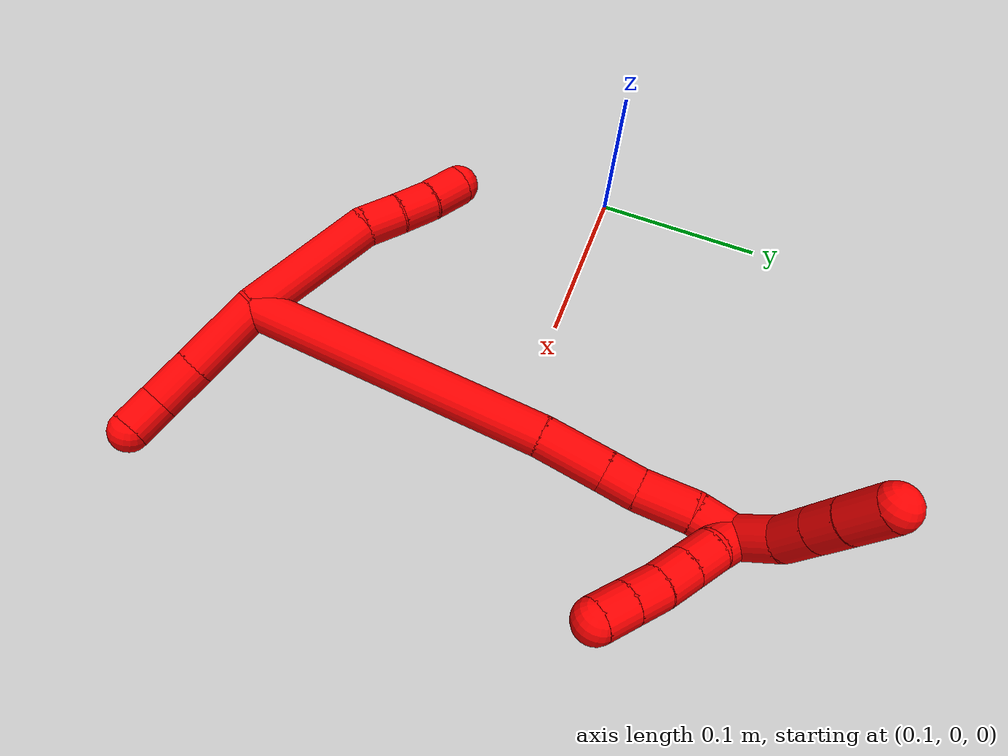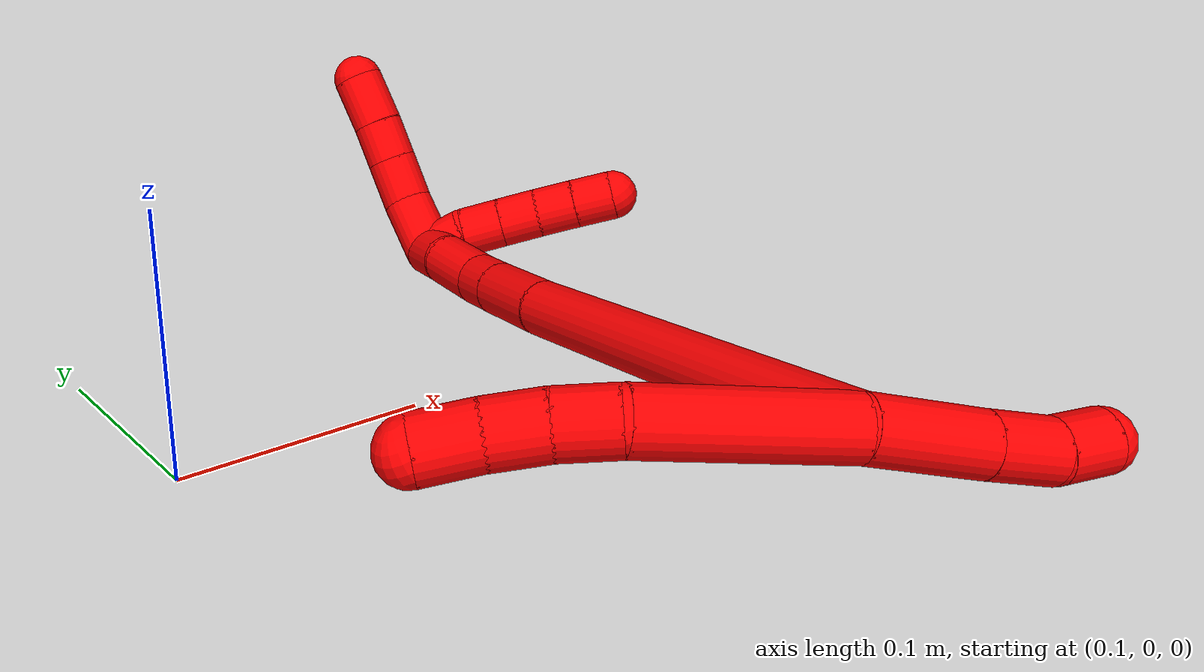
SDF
<sdf version="1.7">
 <world name="default">
  <model name="2">
   <static>0</static>
   <link name="2">
    <collision name="collision-cylinder-e_1_2_8">
     <pose>-0.029377 0.017899 0.021505 -0.694149 -0.80977 0.307589</pose>
     <geometry><cylinder><radius>0.0125</radius><length>0.081139</length></cylinder></geometry>
     <surface>
      <friction><ode><mu>1.16</mu><mu2>1.16</mu2><slip1>0</slip1><slip2>0</slip2></ode></friction>
      <contact><ode><kp>1e+06</kp><kd>1</kd><max_vel>0</max_vel><min_depth>0.001</min_depth></ode></contact>
     </surface>
    </collision>
    <visual name="visual-cylinder-e_1_2_8">
     <pose>-0.029377 0.017899 0.021505 -0.694149 -0.80977 0.307589</pose>
     <geometry><cylinder><radius>0.0125</radius><length>0.081139</length></cylinder></geometry>
     <material><ambient>1 0 0 1</ambient></material>
    </visual>
    <collision name="collision-cylinder-e_2_8_9">
     <pose>-0.066845 0.042935 0.046916 -1.06994 -0.782596 0.479585</pose>
     <geometry><cylinder><radius>0.0125</radius><length>0.022947</length></cylinder></geometry>
     <surface>
      <friction><ode><mu>1.16</mu><mu2>1.16</mu2><slip1>0</slip1><slip2>0</slip2></ode></friction>
      <contact><ode><kp>1e+06</kp><kd>1</kd><max_vel>0</max_vel><min_depth>0.001</min_depth></ode></contact>
     </surface>
    </collision>
    <visual name="visual-cylinder-e_2_8_9">
     <pose>-0.066845 0.042935 0.046916 -1.06994 -0.782596 0.479585</pose>
     <geometry><cylinder><radius>0.0125</radius><length>0.022947</length></cylinder></geometry>
     <material><ambient>1 0 0 1</ambient></material>
    </visual>
    <collision name="collision-cylinder-e_3_9_10">
     <pose>-0.083572 0.056315 0.0541 -1.08743 -0.886079 0.55866</pose>
     <geometry><cylinder><radius>0.0125</radius><length>0.0223</length></cylinder></geometry>
     <surface>
      <friction><ode><mu>1.16</mu><mu2>1.16</mu2><slip1>0</slip1><slip2>0</slip2></ode></friction>
      <contact><ode><kp>1e+06</kp><kd>1</kd><max_vel>0</max_vel><min_depth>0.001</min_depth></ode></contact>
     </surface>
    </collision>
    <visual name="visual-cylinder-e_3_9_10">
     <pose>-0.083572 0.056315 0.0541 -1.08743 -0.886079 0.55866</pose>
     <geometry><cylinder><radius>0.0125</radius><length>0.0223</length></cylinder></geometry>
     <material><ambient>1 0 0 1</ambient></material>
    </visual>
    <collision name="collision-cylinder-e_4_10_6">
     <pose>-0.102104 0.067962 0.060886 -0.994893 -0.993731 0.57268</pose>
     <geometry><cylinder><radius>0.0125</radius><length>0.023615</length></cylinder></geometry>
     <surface>
      <friction><ode><mu>1.16</mu><mu2>1.16</mu2><slip1>0</slip1><slip2>0</slip2></ode></friction>
      <contact><ode><kp>1e+06</kp><kd>1</kd><max_vel>0</max_vel><min_depth>0.001</min_depth></ode></contact>
     </surface>
    </collision>
    <visual name="visual-cylinder-e_4_10_6">
     <pose>-0.102104 0.067962 0.060886 -0.994893 -0.993731 0.57268</pose>
     <geometry><cylinder><radius>0.0125</radius><length>0.023615</length></cylinder></geometry>
     <material><ambient>1 0 0 1</ambient></material>
    </visual>
    <collision name="collision-cylinder-e_1_2_11">
     <pose>0.016543 -0.008218 -0.015757 2.66085 0.74961 2.02719</pose>
     <geometry><cylinder><radius>0.0125</radius><length>0.048559</length></cylinder></geometry>
     <surface>
      <friction><ode><mu>1.16</mu><mu2>1.16</mu2><slip1>0</slip1><slip2>0</slip2></ode></friction>
      <contact><ode><kp>1e+06</kp><kd>1</kd><max_vel>0</max_vel><min_depth>0.001</min_depth></ode></contact>
     </surface>
    </collision>
    <visual name="visual-cylinder-e_1_2_11">
     <pose>0.016543 -0.008218 -0.015757 2.66085 0.74961 2.02719</pose>
     <geometry><cylinder><radius>0.0125</radius><length>0.048559</length></cylinder></geometry>
     <material><ambient>1 0 0 1</ambient></material>
    </visual>
    <collision name="collision-cylinder-e_2_11_12">
     <pose>0.043179 -0.021252 -0.040572 2.65297 0.777309 2.04787</pose>
     <geometry><cylinder><radius>0.0125</radius><length>0.028782</length></cylinder></geometry>
     <surface>
      <friction><ode><mu>1.16</mu><mu2>1.16</mu2><slip1>0</slip1><slip2>0</slip2></ode></friction>
      <contact><ode><kp>1e+06</kp><kd>1</kd><max_vel>0</max_vel><min_depth>0.001</min_depth></ode></contact>
     </surface>
    </collision>
    <visual name="visual-cylinder-e_2_11_12">
     <pose>0.043179 -0.021252 -0.040572 2.65297 0.777309 2.04787</pose>
     <geometry><cylinder><radius>0.0125</radius><length>0.028782</length></cylinder></geometry>
     <material><ambient>1 0 0 1</ambient></material>
    </visual>
    <collision name="collision-cylinder-e_3_12_5">
     <pose>0.062951 -0.028865 -0.054812 2.64662 1.02412 2.29666</pose>
     <geometry><cylinder><radius>0.0125</radius><length>0.022659</length></cylinder></geometry>
     <surface>
      <friction><ode><mu>1.16</mu><mu2>1.16</mu2><slip1>0</slip1><slip2>0</slip2></ode></friction>
      <contact><ode><kp>1e+06</kp><kd>1</kd><max_vel>0</max_vel><min_depth>0.001</min_depth></ode></contact>
     </surface>
    </collision>
    <visual name="visual-cylinder-e_3_12_5">
     <pose>0.062951 -0.028865 -0.054812 2.64662 1.02412 2.29666</pose>
     <geometry><cylinder><radius>0.0125</radius><length>0.022659</length></cylinder></geometry>
     <material><ambient>1 0 0 1</ambient></material>
    </visual>
    <collision name="collision-cylinder-e_1_2_13">
     <pose>0.003151 0.091722 0.00148 -1.55466 0.03434 -0.03379</pose>
     <geometry><cylinder><radius>0.0125</radius><length>0.183575</length></cylinder></geometry>
     <surface>
      <friction><ode><mu>1.16</mu><mu2>1.16</mu2><slip1>0</slip1><slip2>0</slip2></ode></friction>
      <contact><ode><kp>1e+06</kp><kd>1</kd><max_vel>0</max_vel><min_depth>0.001</min_depth></ode></contact>
     </surface>
    </collision>
    <visual name="visual-cylinder-e_1_2_13">
     <pose>0.003151 0.091722 0.00148 -1.55466 0.03434 -0.03379</pose>
     <geometry><cylinder><radius>0.0125</radius><length>0.183575</length></cylinder></geometry>
     <material><ambient>1 0 0 1</ambient></material>
    </visual>
    <collision name="collision-cylinder-e_2_13_14">
     <pose>0.008409 0.203397 0.002443 -1.59674 0.10516 -0.107918</pose>
     <geometry><cylinder><radius>0.0125</radius><length>0.040142</length></cylinder></geometry>
     <surface>
      <friction><ode><mu>1.16</mu><mu2>1.16</mu2><slip1>0</slip1><slip2>0</slip2></ode></friction>
      <contact><ode><kp>1e+06</kp><kd>1</kd><max_vel>0</max_vel><min_depth>0.001</min_depth></ode></contact>
     </surface>
    </collision>
    <visual name="visual-cylinder-e_2_13_14">
     <pose>0.008409 0.203397 0.002443 -1.59674 0.10516 -0.107918</pose>
     <geometry><cylinder><radius>0.0125</radius><length>0.040142</length></cylinder></geometry>
     <material><ambient>1 0 0 1</ambient></material>
    </visual>
    <collision name="collision-cylinder-e_3_14_15">
     <pose>0.011745 0.233573 0.001697 -1.59307 0.119613 -0.1223</pose>
     <geometry><cylinder><radius>0.0125</radius><length>0.020599</length></cylinder></geometry>
     <surface>
      <friction><ode><mu>1.16</mu><mu2>1.16</mu2><slip1>0</slip1><slip2>0</slip2></ode></friction>
      <contact><ode><kp>1e+06</kp><kd>1</kd><max_vel>0</max_vel><min_depth>0.001</min_depth></ode></contact>
     </surface>
    </collision>
    <visual name="visual-cylinder-e_3_14_15">
     <pose>0.011745 0.233573 0.001697 -1.59307 0.119613 -0.1223</pose>
     <geometry><cylinder><radius>0.0125</radius><length>0.020599</length></cylinder></geometry>
     <material><ambient>1 0 0 1</ambient></material>
    </visual>
    <collision name="collision-cylinder-e_4_15_16">
     <pose>0.014553 0.259528 0.003325 -1.45339 0.099307 -0.088297</pose>
     <geometry><cylinder><radius>0.0125</radius><length>0.031839</length></cylinder></geometry>
     <surface>
      <friction><ode><mu>1.16</mu><mu2>1.16</mu2><slip1>0</slip1><slip2>0</slip2></ode></friction>
      <contact><ode><kp>1e+06</kp><kd>1</kd><max_vel>0</max_vel><min_depth>0.001</min_depth></ode></contact>
     </surface>
    </collision>
    <visual name="visual-cylinder-e_4_15_16">
     <pose>0.014553 0.259528 0.003325 -1.45339 0.099307 -0.088297</pose>
     <geometry><cylinder><radius>0.0125</radius><length>0.031839</length></cylinder></geometry>
     <material><ambient>1 0 0 1</ambient></material>
    </visual>
    <collision name="collision-cylinder-e_5_16_1">
     <pose>0.01809 0.287 0.004484 -1.63013 0.165036 -0.17508</pose>
     <geometry><cylinder><radius>0.0125</radius><length>0.023845</length></cylinder></geometry>
     <surface>
      <friction><ode><mu>1.16</mu><mu2>1.16</mu2><slip1>0</slip1><slip2>0</slip2></ode></friction>
      <contact><ode><kp>1e+06</kp><kd>1</kd><max_vel>0</max_vel><min_depth>0.001</min_depth></ode></contact>
     </surface>
    </collision>
    <visual name="visual-cylinder-e_5_16_1">
     <pose>0.01809 0.287 0.004484 -1.63013 0.165036 -0.17508</pose>
     <geometry><cylinder><radius>0.0125</radius><length>0.023845</length></cylinder></geometry>
     <material><ambient>1 0 0 1</ambient></material>
    </visual>
    <collision name="collision-cylinder-e_1_1_17">
     <pose>0.025066 0.30786 0.014358 -0.711801 0.34499 -0.12935</pose>
     <geometry><cylinder><radius>0.0125</radius><length>0.029673</length></cylinder></geometry>
     <surface>
      <friction><ode><mu>1.16</mu><mu2>1.16</mu2><slip1>0</slip1><slip2>0</slip2></ode></friction>
      <contact><ode><kp>1e+06</kp><kd>1</kd><max_vel>0</max_vel><min_depth>0.001</min_depth></ode></contact>
     </surface>
    </collision>
    <visual name="visual-cylinder-e_1_1_17">
     <pose>0.025066 0.30786 0.014358 -0.711801 0.34499 -0.12935</pose>
     <geometry><cylinder><radius>0.0125</radius><length>0.029673</length></cylinder></geometry>
     <material><ambient>1 0 0 1</ambient></material>
    </visual>
    <collision name="collision-cylinder-e_2_17_18">
     <pose>0.033705 0.321199 0.035447 -0.381469 0.309364 -0.060195</pose>
     <geometry><cylinder><radius>0.0125</radius><length>0.023792</length></cylinder></geometry>
     <surface>
      <friction><ode><mu>1.16</mu><mu2>1.16</mu2><slip1>0</slip1><slip2>0</slip2></ode></friction>
      <contact><ode><kp>1e+06</kp><kd>1</kd><max_vel>0</max_vel><min_depth>0.001</min_depth></ode></contact>
     </surface>
    </collision>
    <visual name="visual-cylinder-e_2_17_18">
     <pose>0.033705 0.321199 0.035447 -0.381469 0.309364 -0.060195</pose>
     <geometry><cylinder><radius>0.0125</radius><length>0.023792</length></cylinder></geometry>
     <material><ambient>1 0 0 1</ambient></material>
    </visual>
    <collision name="collision-cylinder-e_3_18_19">
     <pose>0.040457 0.329063 0.055053 -0.381435 0.309357 -0.060188</pose>
     <geometry><cylinder><radius>0.0125</radius><length>0.020563</length></cylinder></geometry>
     <surface>
      <friction><ode><mu>1.16</mu><mu2>1.16</mu2><slip1>0</slip1><slip2>0</slip2></ode></friction>
      <contact><ode><kp>1e+06</kp><kd>1</kd><max_vel>0</max_vel><min_depth>0.001</min_depth></ode></contact>
     </surface>
    </collision>
    <visual name="visual-cylinder-e_3_18_19">
     <pose>0.040457 0.329063 0.055053 -0.381435 0.309357 -0.060188</pose>
     <geometry><cylinder><radius>0.0125</radius><length>0.020563</length></cylinder></geometry>
     <material><ambient>1 0 0 1</ambient></material>
    </visual>
    <collision name="collision-cylinder-e_4_19_4">
     <pose>0.047083 0.337729 0.075598 -0.41305 0.272541 -0.057441</pose>
     <geometry><cylinder><radius>0.0125</radius><length>0.025973</length></cylinder></geometry>
     <surface>
      <friction><ode><mu>1.16</mu><mu2>1.16</mu2><slip1>0</slip1><slip2>0</slip2></ode></friction>
      <contact><ode><kp>1e+06</kp><kd>1</kd><max_vel>0</max_vel><min_depth>0.001</min_depth></ode></contact>
     </surface>
    </collision>
    <visual name="visual-cylinder-e_4_19_4">
     <pose>0.047083 0.337729 0.075598 -0.41305 0.272541 -0.057441</pose>
     <geometry><cylinder><radius>0.0125</radius><length>0.025973</length></cylinder></geometry>
     <material><ambient>1 0 0 1</ambient></material>
    </visual>
    <collision name="collision-cylinder-e_1_1_20">
     <pose>0.028552 0.293497 0.004227 1.48686 1.01669 0.946841</pose>
     <geometry><cylinder><radius>0.0125</radius><length>0.02</length></cylinder></geometry>
     <surface>
      <friction><ode><mu>1.16</mu><mu2>1.16</mu2><slip1>0</slip1><slip2>0</slip2></ode></friction>
      <contact><ode><kp>1e+06</kp><kd>1</kd><max_vel>0</max_vel><min_depth>0.001</min_depth></ode></contact>
     </surface>
    </collision>
    <visual name="visual-cylinder-e_1_1_20">
     <pose>0.028552 0.293497 0.004227 1.48686 1.01669 0.946841</pose>
     <geometry><cylinder><radius>0.0125</radius><length>0.02</length></cylinder></geometry>
     <material><ambient>1 0 0 1</ambient></material>
    </visual>
    <collision name="collision-cylinder-e_2_20_21">
     <pose>0.045287 0.282899 0.002776 1.91048 0.966908 1.27719</pose>
     <geometry><cylinder><radius>0.0125</radius><length>0.02</length></cylinder></geometry>
     <surface>
      <friction><ode><mu>1.16</mu><mu2>1.16</mu2><slip1>0</slip1><slip2>0</slip2></ode></friction>
      <contact><ode><kp>1e+06</kp><kd>1</kd><max_vel>0</max_vel><min_depth>0.001</min_depth></ode></contact>
     </surface>
    </collision>
    <visual name="visual-cylinder-e_2_20_21">
     <pose>0.045287 0.282899 0.002776 1.91048 0.966908 1.27719</pose>
     <geometry><cylinder><radius>0.0125</radius><length>0.02</length></cylinder></geometry>
     <material><ambient>1 0 0 1</ambient></material>
    </visual>
    <collision name="collision-cylinder-e_3_21_22">
     <pose>0.061727 0.272162 -0.001025 1.91164 0.96286 1.27365</pose>
     <geometry><cylinder><radius>0.0125</radius><length>0.02</length></cylinder></geometry>
     <surface>
      <friction><ode><mu>1.16</mu><mu2>1.16</mu2><slip1>0</slip1><slip2>0</slip2></ode></friction>
      <contact><ode><kp>1e+06</kp><kd>1</kd><max_vel>0</max_vel><min_depth>0.001</min_depth></ode></contact>
     </surface>
    </collision>
    <visual name="visual-cylinder-e_3_21_22">
     <pose>0.061727 0.272162 -0.001025 1.91164 0.96286 1.27365</pose>
     <geometry><cylinder><radius>0.0125</radius><length>0.02</length></cylinder></geometry>
     <material><ambient>1 0 0 1</ambient></material>
    </visual>
    <collision name="collision-cylinder-e_4_22_23">
     <pose>0.077647 0.260633 -0.004592 1.83422 0.880807 1.10306</pose>
     <geometry><cylinder><radius>0.0125</radius><length>0.02</length></cylinder></geometry>
     <surface>
      <friction><ode><mu>1.16</mu><mu2>1.16</mu2><slip1>0</slip1><slip2>0</slip2></ode></friction>
      <contact><ode><kp>1e+06</kp><kd>1</kd><max_vel>0</max_vel><min_depth>0.001</min_depth></ode></contact>
     </surface>
    </collision>
    <visual name="visual-cylinder-e_4_22_23">
     <pose>0.077647 0.260633 -0.004592 1.83422 0.880807 1.10306</pose>
     <geometry><cylinder><radius>0.0125</radius><length>0.02</length></cylinder></geometry>
     <material><ambient>1 0 0 1</ambient></material>
    </visual>
    <collision name="collision-cylinder-e_5_23_3">
     <pose>0.093057 0.248353 -0.00802 1.85181 0.878294 1.1165</pose>
     <geometry><cylinder><radius>0.0125</radius><length>0.02</length></cylinder></geometry>
     <surface>
      <friction><ode><mu>1.16</mu><mu2>1.16</mu2><slip1>0</slip1><slip2>0</slip2></ode></friction>
      <contact><ode><kp>1e+06</kp><kd>1</kd><max_vel>0</max_vel><min_depth>0.001</min_depth></ode></contact>
     </surface>
    </collision>
    <visual name="visual-cylinder-e_5_23_3">
     <pose>0.093057 0.248353 -0.00802 1.85181 0.878294 1.1165</pose>
     <geometry><cylinder><radius>0.0125</radius><length>0.02</length></cylinder></geometry>
     <material><ambient>1 0 0 1</ambient></material>
    </visual>
    <collision name="collision-sphere-3">
     <pose>0.100753 0.242219 -0.009791 0 -0 0</pose>
     <geometry><sphere><radius>0.0125</radius></sphere></geometry>
     <surface>
      <friction><ode><mu>1.16</mu><mu2>1.16</mu2><slip1>0</slip1><slip2>0</slip2></ode></friction>
      <contact><ode><kp>1e+06</kp><kd>1</kd><max_vel>0</max_vel><min_depth>0.001</min_depth></ode></contact>
     </surface>
    </collision>
    <visual name="visual-sphere-3">
     <pose>0.100753 0.242219 -0.009791 0 -0 0</pose>
     <geometry><sphere><radius>0.0125</radius></sphere></geometry>
     <material><ambient>1 0 0 1</ambient></material>
    </visual>
    <collision name="collision-sphere-23">
     <pose>0.08536 0.254488 -0.006249 0 -0 0</pose>
     <geometry><sphere><radius>0.0125</radius></sphere></geometry>
     <surface>
      <friction><ode><mu>1.16</mu><mu2>1.16</mu2><slip1>0</slip1><slip2>0</slip2></ode></friction>
      <contact><ode><kp>1e+06</kp><kd>1</kd><max_vel>0</max_vel><min_depth>0.001</min_depth></ode></contact>
     </surface>
    </collision>
    <visual name="visual-sphere-23">
     <pose>0.08536 0.254488 -0.006249 0 -0 0</pose>
     <geometry><sphere><radius>0.0125</radius></sphere></geometry>
     <material><ambient>1 0 0 1</ambient></material>
    </visual>
    <collision name="collision-sphere-22">
     <pose>0.069935 0.266779 -0.002934 0 -0 0</pose>
     <geometry><sphere><radius>0.0125</radius></sphere></geometry>
     <surface>
      <friction><ode><mu>1.16</mu><mu2>1.16</mu2><slip1>0</slip1><slip2>0</slip2></ode></friction>
      <contact><ode><kp>1e+06</kp><kd>1</kd><max_vel>0</max_vel><min_depth>0.001</min_depth></ode></contact>
     </surface>
    </collision>
    <visual name="visual-sphere-22">
     <pose>0.069935 0.266779 -0.002934 0 -0 0</pose>
     <geometry><sphere><radius>0.0125</radius></sphere></geometry>
     <material><ambient>1 0 0 1</ambient></material>
    </visual>
    <collision name="collision-sphere-21">
     <pose>0.053518 0.277545 0.000884 0 -0 0</pose>
     <geometry><sphere><radius>0.0125</radius></sphere></geometry>
     <surface>
      <friction><ode><mu>1.16</mu><mu2>1.16</mu2><slip1>0</slip1><slip2>0</slip2></ode></friction>
      <contact><ode><kp>1e+06</kp><kd>1</kd><max_vel>0</max_vel><min_depth>0.001</min_depth></ode></contact>
     </surface>
    </collision>
    <visual name="visual-sphere-21">
     <pose>0.053518 0.277545 0.000884 0 -0 0</pose>
     <geometry><sphere><radius>0.0125</radius></sphere></geometry>
     <material><ambient>1 0 0 1</ambient></material>
    </visual>
    <collision name="collision-sphere-20">
     <pose>0.037056 0.288253 0.004668 0 -0 0</pose>
     <geometry><sphere><radius>0.0125</radius></sphere></geometry>
     <surface>
      <friction><ode><mu>1.16</mu><mu2>1.16</mu2><slip1>0</slip1><slip2>0</slip2></ode></friction>
      <contact><ode><kp>1e+06</kp><kd>1</kd><max_vel>0</max_vel><min_depth>0.001</min_depth></ode></contact>
     </surface>
    </collision>
    <visual name="visual-sphere-20">
     <pose>0.037056 0.288253 0.004668 0 -0 0</pose>
     <geometry><sphere><radius>0.0125</radius></sphere></geometry>
     <material><ambient>1 0 0 1</ambient></material>
    </visual>
    <collision name="collision-sphere-4">
     <pose>0.050578 0.342749 0.087053 0 -0 0</pose>
     <geometry><sphere><radius>0.0125</radius></sphere></geometry>
     <surface>
      <friction><ode><mu>1.16</mu><mu2>1.16</mu2><slip1>0</slip1><slip2>0</slip2></ode></friction>
      <contact><ode><kp>1e+06</kp><kd>1</kd><max_vel>0</max_vel><min_depth>0.001</min_depth></ode></contact>
     </surface>
    </collision>
    <visual name="visual-sphere-4">
     <pose>0.050578 0.342749 0.087053 0 -0 0</pose>
     <geometry><sphere><radius>0.0125</radius></sphere></geometry>
     <material><ambient>1 0 0 1</ambient></material>
    </visual>
    <collision name="collision-sphere-11">
     <pose>0.033086 -0.016437 -0.031514 0 -0 0</pose>
     <geometry><sphere><radius>0.0125</radius></sphere></geometry>
     <surface>
      <friction><ode><mu>1.16</mu><mu2>1.16</mu2><slip1>0</slip1><slip2>0</slip2></ode></friction>
      <contact><ode><kp>1e+06</kp><kd>1</kd><max_vel>0</max_vel><min_depth>0.001</min_depth></ode></contact>
     </surface>
    </collision>
    <visual name="visual-sphere-11">
     <pose>0.033086 -0.016437 -0.031514 0 -0 0</pose>
     <geometry><sphere><radius>0.0125</radius></sphere></geometry>
     <material><ambient>1 0 0 1</ambient></material>
    </visual>
    <collision name="collision-sphere-6">
     <pose>-0.111999 0.073364 0.064394 0 -0 0</pose>
     <geometry><sphere><radius>0.0125</radius></sphere></geometry>
     <surface>
      <friction><ode><mu>1.16</mu><mu2>1.16</mu2><slip1>0</slip1><slip2>0</slip2></ode></friction>
      <contact><ode><kp>1e+06</kp><kd>1</kd><max_vel>0</max_vel><min_depth>0.001</min_depth></ode></contact>
     </surface>
    </collision>
    <visual name="visual-sphere-6">
     <pose>-0.111999 0.073364 0.064394 0 -0 0</pose>
     <geometry><sphere><radius>0.0125</radius></sphere></geometry>
     <material><ambient>1 0 0 1</ambient></material>
    </visual>
    <collision name="collision-sphere-10">
     <pose>-0.092209 0.062559 0.057378 0 -0 0</pose>
     <geometry><sphere><radius>0.0125</radius></sphere></geometry>
     <surface>
      <friction><ode><mu>1.16</mu><mu2>1.16</mu2><slip1>0</slip1><slip2>0</slip2></ode></friction>
      <contact><ode><kp>1e+06</kp><kd>1</kd><max_vel>0</max_vel><min_depth>0.001</min_depth></ode></contact>
     </surface>
    </collision>
    <visual name="visual-sphere-10">
     <pose>-0.092209 0.062559 0.057378 0 -0 0</pose>
     <geometry><sphere><radius>0.0125</radius></sphere></geometry>
     <material><ambient>1 0 0 1</ambient></material>
    </visual>
    <collision name="collision-sphere-9">
     <pose>-0.074935 0.050071 0.050823 0 -0 0</pose>
     <geometry><sphere><radius>0.0125</radius></sphere></geometry>
     <surface>
      <friction><ode><mu>1.16</mu><mu2>1.16</mu2><slip1>0</slip1><slip2>0</slip2></ode></friction>
      <contact><ode><kp>1e+06</kp><kd>1</kd><max_vel>0</max_vel><min_depth>0.001</min_depth></ode></contact>
     </surface>
    </collision>
    <visual name="visual-sphere-9">
     <pose>-0.074935 0.050071 0.050823 0 -0 0</pose>
     <geometry><sphere><radius>0.0125</radius></sphere></geometry>
     <material><ambient>1 0 0 1</ambient></material>
    </visual>
    <collision name="collision-sphere-2">
     <geometry><sphere><radius>0.0125</radius></sphere></geometry>
     <surface>
      <friction><ode><mu>1.16</mu><mu2>1.16</mu2><slip1>0</slip1><slip2>0</slip2></ode></friction>
      <contact><ode><kp>1e+06</kp><kd>1</kd><max_vel>0</max_vel><min_depth>0.001</min_depth></ode></contact>
     </surface>
    </collision>
    <visual name="visual-sphere-2">
     <geometry><sphere><radius>0.0125</radius></sphere></geometry>
     <material><ambient>1 0 0 1</ambient></material>
    </visual>
    <collision name="collision-sphere-19">
     <pose>0.043587 0.332708 0.064143 0 -0 0</pose>
     <geometry><sphere><radius>0.0125</radius></sphere></geometry>
     <surface>
      <friction><ode><mu>1.16</mu><mu2>1.16</mu2><slip1>0</slip1><slip2>0</slip2></ode></friction>
      <contact><ode><kp>1e+06</kp><kd>1</kd><max_vel>0</max_vel><min_depth>0.001</min_depth></ode></contact>
     </surface>
    </collision>
    <visual name="visual-sphere-19">
     <pose>0.043587 0.332708 0.064143 0 -0 0</pose>
     <geometry><sphere><radius>0.0125</radius></sphere></geometry>
     <material><ambient>1 0 0 1</ambient></material>
    </visual>
    <collision name="collision-sphere-8">
     <pose>-0.058755 0.035798 0.04301 0 -0 0</pose>
     <geometry><sphere><radius>0.0125</radius></sphere></geometry>
     <surface>
      <friction><ode><mu>1.16</mu><mu2>1.16</mu2><slip1>0</slip1><slip2>0</slip2></ode></friction>
      <contact><ode><kp>1e+06</kp><kd>1</kd><max_vel>0</max_vel><min_depth>0.001</min_depth></ode></contact>
     </surface>
    </collision>
    <visual name="visual-sphere-8">
     <pose>-0.058755 0.035798 0.04301 0 -0 0</pose>
     <geometry><sphere><radius>0.0125</radius></sphere></geometry>
     <material><ambient>1 0 0 1</ambient></material>
    </visual>
    <collision name="collision-sphere-12">
     <pose>0.053272 -0.026067 -0.049629 0 -0 0</pose>
     <geometry><sphere><radius>0.0125</radius></sphere></geometry>
     <surface>
      <friction><ode><mu>1.16</mu><mu2>1.16</mu2><slip1>0</slip1><slip2>0</slip2></ode></friction>
      <contact><ode><kp>1e+06</kp><kd>1</kd><max_vel>0</max_vel><min_depth>0.001</min_depth></ode></contact>
     </surface>
    </collision>
    <visual name="visual-sphere-12">
     <pose>0.053272 -0.026067 -0.049629 0 -0 0</pose>
     <geometry><sphere><radius>0.0125</radius></sphere></geometry>
     <material><ambient>1 0 0 1</ambient></material>
    </visual>
    <collision name="collision-sphere-5">
     <pose>0.072629 -0.031662 -0.059995 0 -0 0</pose>
     <geometry><sphere><radius>0.0125</radius></sphere></geometry>
     <surface>
      <friction><ode><mu>1.16</mu><mu2>1.16</mu2><slip1>0</slip1><slip2>0</slip2></ode></friction>
      <contact><ode><kp>1e+06</kp><kd>1</kd><max_vel>0</max_vel><min_depth>0.001</min_depth></ode></contact>
     </surface>
    </collision>
    <visual name="visual-sphere-5">
     <pose>0.072629 -0.031662 -0.059995 0 -0 0</pose>
     <geometry><sphere><radius>0.0125</radius></sphere></geometry>
     <material><ambient>1 0 0 1</ambient></material>
    </visual>
    <collision name="collision-sphere-13">
     <pose>0.006303 0.183443 0.00296 0 -0 0</pose>
     <geometry><sphere><radius>0.0125</radius></sphere></geometry>
     <surface>
      <friction><ode><mu>1.16</mu><mu2>1.16</mu2><slip1>0</slip1><slip2>0</slip2></ode></friction>
      <contact><ode><kp>1e+06</kp><kd>1</kd><max_vel>0</max_vel><min_depth>0.001</min_depth></ode></contact>
     </surface>
    </collision>
    <visual name="visual-sphere-13">
     <pose>0.006303 0.183443 0.00296 0 -0 0</pose>
     <geometry><sphere><radius>0.0125</radius></sphere></geometry>
     <material><ambient>1 0 0 1</ambient></material>
    </visual>
    <collision name="collision-sphere-14">
     <pose>0.010516 0.22335 0.001925 0 -0 0</pose>
     <geometry><sphere><radius>0.0125</radius></sphere></geometry>
     <surface>
      <friction><ode><mu>1.16</mu><mu2>1.16</mu2><slip1>0</slip1><slip2>0</slip2></ode></friction>
      <contact><ode><kp>1e+06</kp><kd>1</kd><max_vel>0</max_vel><min_depth>0.001</min_depth></ode></contact>
     </surface>
    </collision>
    <visual name="visual-sphere-14">
     <pose>0.010516 0.22335 0.001925 0 -0 0</pose>
     <geometry><sphere><radius>0.0125</radius></sphere></geometry>
     <material><ambient>1 0 0 1</ambient></material>
    </visual>
    <collision name="collision-sphere-15">
     <pose>0.012974 0.243797 0.00147 0 -0 0</pose>
     <geometry><sphere><radius>0.0125</radius></sphere></geometry>
     <surface>
      <friction><ode><mu>1.16</mu><mu2>1.16</mu2><slip1>0</slip1><slip2>0</slip2></ode></friction>
      <contact><ode><kp>1e+06</kp><kd>1</kd><max_vel>0</max_vel><min_depth>0.001</min_depth></ode></contact>
     </surface>
    </collision>
    <visual name="visual-sphere-15">
     <pose>0.012974 0.243797 0.00147 0 -0 0</pose>
     <geometry><sphere><radius>0.0125</radius></sphere></geometry>
     <material><ambient>1 0 0 1</ambient></material>
    </visual>
    <collision name="collision-sphere-16">
     <pose>0.016131 0.27526 0.005181 0 -0 0</pose>
     <geometry><sphere><radius>0.0125</radius></sphere></geometry>
     <surface>
      <friction><ode><mu>1.16</mu><mu2>1.16</mu2><slip1>0</slip1><slip2>0</slip2></ode></friction>
      <contact><ode><kp>1e+06</kp><kd>1</kd><max_vel>0</max_vel><min_depth>0.001</min_depth></ode></contact>
     </surface>
    </collision>
    <visual name="visual-sphere-16">
     <pose>0.016131 0.27526 0.005181 0 -0 0</pose>
     <geometry><sphere><radius>0.0125</radius></sphere></geometry>
     <material><ambient>1 0 0 1</ambient></material>
    </visual>
    <collision name="collision-sphere-1">
     <pose>0.020048 0.29874 0.003786 0 -0 0</pose>
     <geometry><sphere><radius>0.0125</radius></sphere></geometry>
     <surface>
      <friction><ode><mu>1.16</mu><mu2>1.16</mu2><slip1>0</slip1><slip2>0</slip2></ode></friction>
      <contact><ode><kp>1e+06</kp><kd>1</kd><max_vel>0</max_vel><min_depth>0.001</min_depth></ode></contact>
     </surface>
    </collision>
    <visual name="visual-sphere-1">
     <pose>0.020048 0.29874 0.003786 0 -0 0</pose>
     <geometry><sphere><radius>0.0125</radius></sphere></geometry>
     <material><ambient>1 0 0 1</ambient></material>
    </visual>
    <collision name="collision-sphere-18">
     <pose>0.037327 0.325417 0.045963 0 -0 0</pose>
     <geometry><sphere><radius>0.0125</radius></sphere></geometry>
     <surface>
      <friction><ode><mu>1.16</mu><mu2>1.16</mu2><slip1>0</slip1><slip2>0</slip2></ode></friction>
      <contact><ode><kp>1e+06</kp><kd>1</kd><max_vel>0</max_vel><min_depth>0.001</min_depth></ode></contact>
     </surface>
    </collision>
    <visual name="visual-sphere-18">
     <pose>0.037327 0.325417 0.045963 0 -0 0</pose>
     <geometry><sphere><radius>0.0125</radius></sphere></geometry>
     <material><ambient>1 0 0 1</ambient></material>
    </visual>
    <collision name="collision-sphere-17">
     <pose>0.030083 0.31698 0.02493 0 -0 0</pose>
     <geometry><sphere><radius>0.0125</radius></sphere></geometry>
     <surface>
      <friction><ode><mu>1.16</mu><mu2>1.16</mu2><slip1>0</slip1><slip2>0</slip2></ode></friction>
      <contact><ode><kp>1e+06</kp><kd>1</kd><max_vel>0</max_vel><min_depth>0.001</min_depth></ode></contact>
     </surface>
    </collision>
    <visual name="visual-sphere-17">
     <pose>0.030083 0.31698 0.02493 0 -0 0</pose>
     <geometry><sphere><radius>0.0125</radius></sphere></geometry>
     <material><ambient>1 0 0 1</ambient></material>
    </visual>
    <inertial>
     <pose>0.009412 0.144027 0.009521 0 -0 0</pose>
     <mass>0.75</mass>
     <inertia>
      <ixx>0.000589</ixx>
      <ixy>0</ixy>
      <ixz>0</ixz>
      <iyy>0.000111</iyy>
      <iyz>0</iyz>
      <izz>-0.00055</izz>
     </inertia>
    </inertial>
   </link>
   <pose>0.270303 -0.164641 0.031122 -0.112834 -0.451631 0.022724</pose>
  </model>
 </world>
</sdf>
